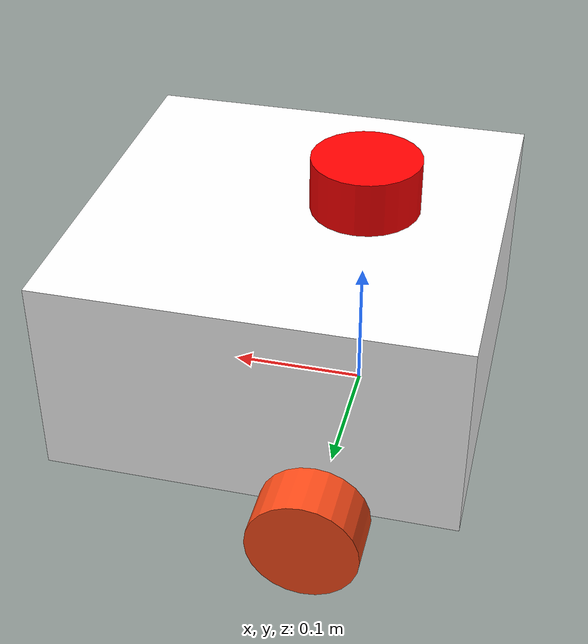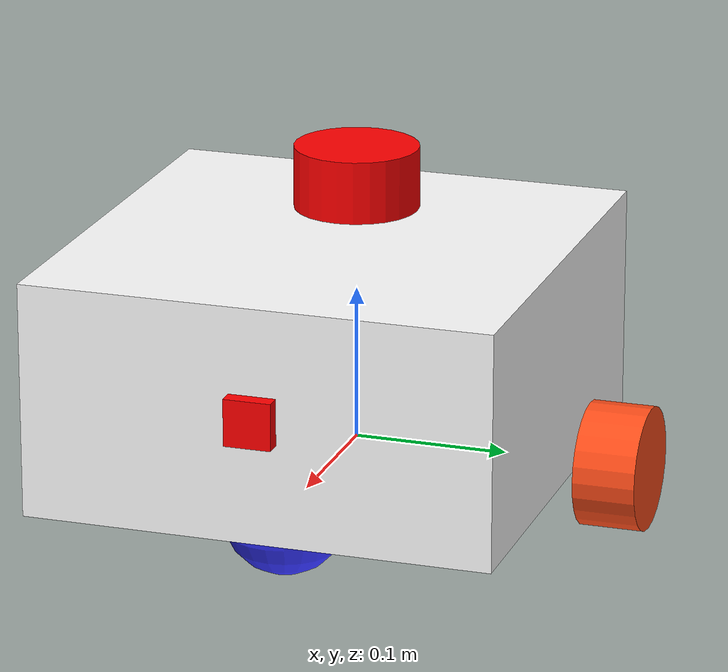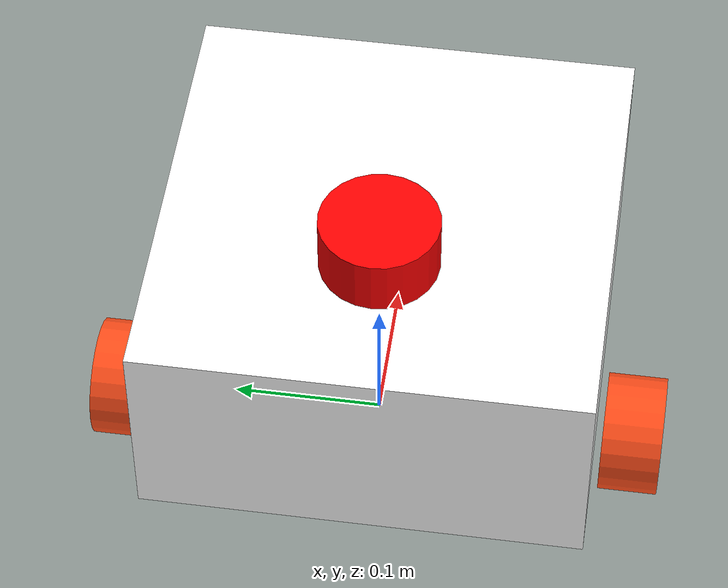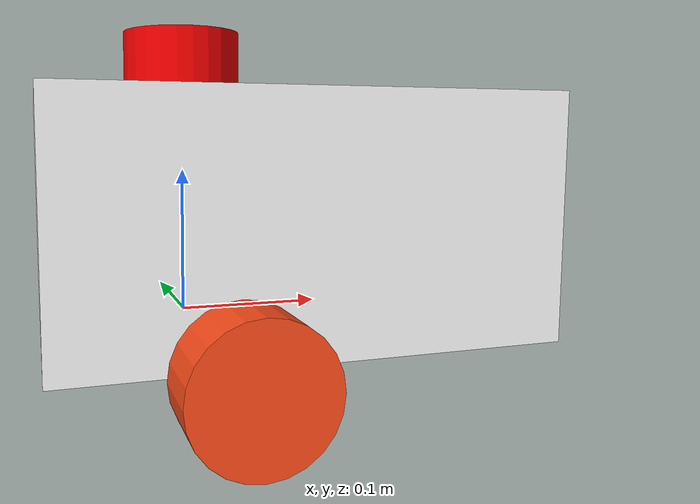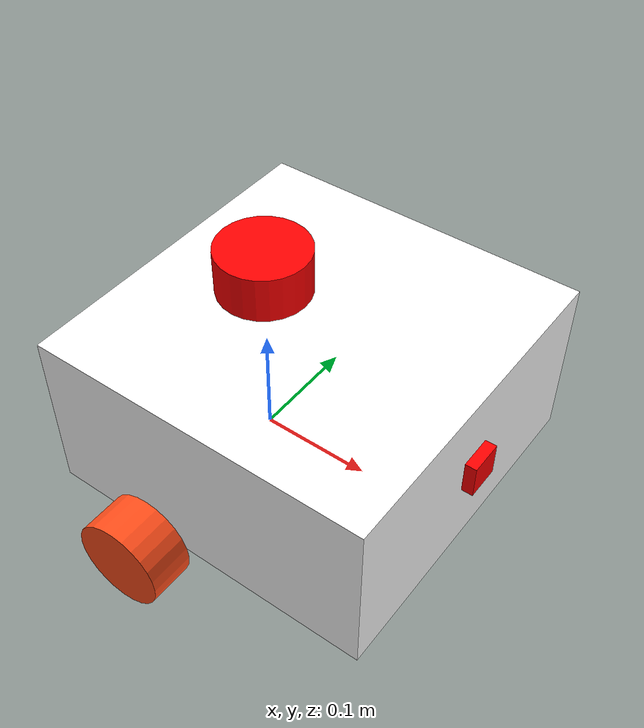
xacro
<?xml version="1.0"?>
<robot xmlns:xacro="http://www.ros.org/wiki/xacro"  name="robot">

    <!-- include xacro files-->
    <xacro:include filename="robot_core.xacro"/>
    <xacro:include filename="ros2_control.xacro"/>

    <xacro:include filename="lidar.xacro"/>
    <xacro:include filename="camera.xacro"/>
</robot>

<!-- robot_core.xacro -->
<robot xmlns:xacro="http://www.ros.org/wiki/xacro">

    <!-- inertial macros -->
    <xacro:include filename="inertial_macros.xacro"/>

    <!-- materials -->
    <material name="white">
        <color rgba="1 1 1 1"/>
    </material>

    <material name="orange">
        <color rgba="1 0.3 0.1 1"/>
    </material>

    <material name="blue">
        <color rgba="0.2 0.2 1 1"/>
    </material>

    <material name="black">
        <color rgba="0 0 0 1"/>
    </material>

    <material name="red">
        <color rgba="1 0 0 1"/>
    </material>

    <!-- base link -->

    <link name="base_link">

    </link>

    <!-- Base Footprint -->

    <joint name="base_footprint_joint" type="fixed">
        <parent link="base_link"/>
        <child link="base_footprint"/>
        <origin xyz="0.0 0.0 0.0" rpy="0.0 0.0 0.0"/>
    </joint>

    <link name="base_footprint">

    </link>

    <!-- chassis joint and link -->
    <joint name="chassis_joint" type="fixed">
        <parent link="base_link"/>
        <child link="chassis"/>
        <origin  xyz="-0.1 0 0"/>
    </joint>

    <link name="chassis">
        <visual>
            <origin xyz="0.15 0.0 0.075"/>
            <geometry>
                <box size="0.3 0.3 0.15"/>
            </geometry>
            <material name="white"/>

        </visual>
        <collision>
            <origin xyz="0.15 0.0 0.075"/>
            <geometry>
                <box size="0.3 0.3 0.15"/>
            </geometry>
        </collision>
        <xacro:inertial_box mass="0.5" x="0.3" y="0.3" z="0.15">
            <origin xyz="0.15 0.0 0.075" rpy="0.0 0.0 0.0"/>
        </xacro:inertial_box>
    </link>

    <gazebo reference ="chassis">
        <material>
            Gazebo/White
        </material>
    </gazebo>

    <!-- left wheel joint and link -->

    <joint name="left_wheel_joint" type="continuous">
        <parent link="base_link"/>
        <child link="left_wheel"/>
        <origin xyz="0.0 0.175 0.0" rpy="-${pi/2} 0.0 0.0"/>
        <axis xyz="0.0 0.0 1.0"/>
    </joint>

    <link name="left_wheel">
        <visual>
            <origin xyz="0.0 0.0 0.0"/>
            <geometry>
                <cylinder radius="0.04" length="0.04"/>
            </geometry>
            <material name="orange"/>
        </visual>

        <collision>
            <geometry>
                <cylinder radius="0.04" length="0.04"/>
            </geometry>
        </collision>

        <xacro:inertial_cylinder mass = "0.1" length = "0.04" radius="0.04" >
            <origin xyz="0.0 0.0 0.0" rpy="0.0 0.0 0.0"/>
        </xacro:inertial_cylinder>
    </link>

    <gazebo reference ="left_wheel">
        <material>
            Gazebo/Orange
        </material>
    </gazebo>

    <!-- left wheel joint and link -->

    <joint name="right_wheel_joint" type="continuous">
        <parent link="base_link"/>
        <child link="right_wheel"/>
        <origin xyz="0.0 -0.175 0.0" rpy="${pi/2} 0.0 0.0"/>
        <axis xyz="0.0 0.0 -1.0"/>
    </joint>

    <link name="right_wheel">
        <visual>
            <origin xyz="0.0 0.0 0.0"/>
            <geometry>
                <cylinder radius="0.04" length="0.04"/>
            </geometry>
            <material name="orange"/>
        </visual>

        <collision>
            <geometry>
                <cylinder radius="0.04" length="0.04"/>
            </geometry>
        </collision>

        <xacro:inertial_cylinder mass = "0.1" length = "0.04" radius="0.04" >
            <origin xyz="0.0 0.0 0.0" rpy="0.0 0.0 0.0"/>
        </xacro:inertial_cylinder>
    </link>

    <gazebo reference ="right_wheel">
        <material>
            Gazebo/Orange
        </material>
    </gazebo>

    <!-- caster wheel joint and link -->

    <joint name="caster_wheel_joint" type="fixed">
        <parent link="chassis"/>
        <child link="caster_wheel"/>
        <origin xyz="0.24 0.0 0.0"/>
    </joint>

    <link name="caster_wheel">
        <visual>
            <geometry>
                <sphere radius="0.04"/>
            </geometry>
            <material name="blue"/>
        </visual>

        <collision>
            <geometry>
                <sphere radius="0.04"/>
            </geometry>
        </collision>

        <xacro:inertial_sphere mass="0.1" radius="0.04">
            <origin xyz="0.0 0.0 0.0" rpy="0.0 0.0 0.0"/>
        </xacro:inertial_sphere>
    </link>

    <gazebo reference ="caster_wheel">
        <material>
            Gazebo/Blue
        </material>
        <mu1 value = "0.001" />
        <mu2 value = "0.001" />

    </gazebo>

</robot>

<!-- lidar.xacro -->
<robot xmlns:xacro="http://www.ros.org/wiki/xacro">

    <joint name="lidar_joint" type="fixed">
        <parent link="chassis"/>
        <child link="laser_frame"/>
        <origin xyz="0.1 0.0 0.175" rpy="0.0 0.0 0.0"/>
    </joint>

    <link name="laser_frame">
        <visual>
            <origin xyz="0.0 0.0 0.0"/>
            <geometry>
                <cylinder radius="0.04" length="0.04"/>
            </geometry>
            <material name="red"/>
        </visual>

        <collision>
            <geometry>
                <cylinder radius="0.04" length="0.04"/>
            </geometry>
        </collision>

        <xacro:inertial_cylinder mass = "0.1" length = "0.04" radius="0.04" >
            <origin xyz="0.0 0.0 0.0" rpy="0.0 0.0 0.0"/>
        </xacro:inertial_cylinder>
    </link>

    <gazebo reference ="laser_frame">
        <material>
            Gazebo/Red
        </material>
        <sensor name="laser" type="ray">
            <pose> 0 0 0 0 0 0</pose>
            <visualize>true</visualize>
            <update_rate>10</update_rate>
            <ray>
                <scan>
                    <horizontal>
                        <sample>360</sample>
                        <resolution>1</resolution>
                        <min_angle>-3.14</min_angle>
                        <max_angle>3.14</max_angle>
                    </horizontal>
                </scan>
                <range>
                    <min>0.3</min>
                    <max>12</max>
                    <resolution>0.01</resolution>
                </range>
            </ray>

            <plugin name="laser_controller" filename="libgazebo_ros_ray_sensor.so">
                <ros>
                    <argument>~/out:=scan</argument>
                </ros>
                <output_type>sensor_msgs/LaserScan</output_type>
                <frame_name>laser_frame</frame_name>
            </plugin>

        </sensor>

    </gazebo>

</robot>

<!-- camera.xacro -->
<robot xmlns:xacro="http://www.ros.org/wiki/xacro">

    <joint name="camera_joint" type="fixed">
        <parent link="chassis"/>
        <child link="camera_link"/>
        <origin xyz="0.305 0.0 0.08" rpy="0.0 0.0 0.0"/>
    </joint>

    <link name="camera_link">
        <visual>
            <origin xyz="0.0 0.0 0.0"/>
            <geometry>
                <box size="0.010 0.03 0.03"/>
            </geometry>
            <material name="red"/>
        </visual>
    </link>

    <joint name="camera_optical_joint" type="fixed">
        <parent link="camera_link"/>
        <child link="camera_optical_link"/>
        <origin xyz="0.0 0.0 0.0" rpy="${-pi/2} 0.0 ${-pi/2}"/>
    </joint>

    <link name="camera_optical_link"></link>

    <gazebo reference ="camera_link">
        <material>
            Gazebo/Red
        </material>
        <sensor name="laser" type="camera">
            <pose> 0 0 0 0 0 0</pose>
            <visualize>true</visualize>
            <update_rate>10</update_rate>
            <camera>
                <horizontal_fov>1.089</horizontal_fov>
                <image>
                    <format>="RGB8"</format>
                    <width>640</width>
                    <height>480</height>
                </image>
                <clip>
                    <near>0.05</near>
                    <far>8.0</far>
                </clip>
            </camera>

            <plugin name="camera_controller" filename="libgazebo_ros_camera.so">
                <frame_name>camera_optical_link</frame_name>
            </plugin>

        </sensor>
    </gazebo>

</robot>
